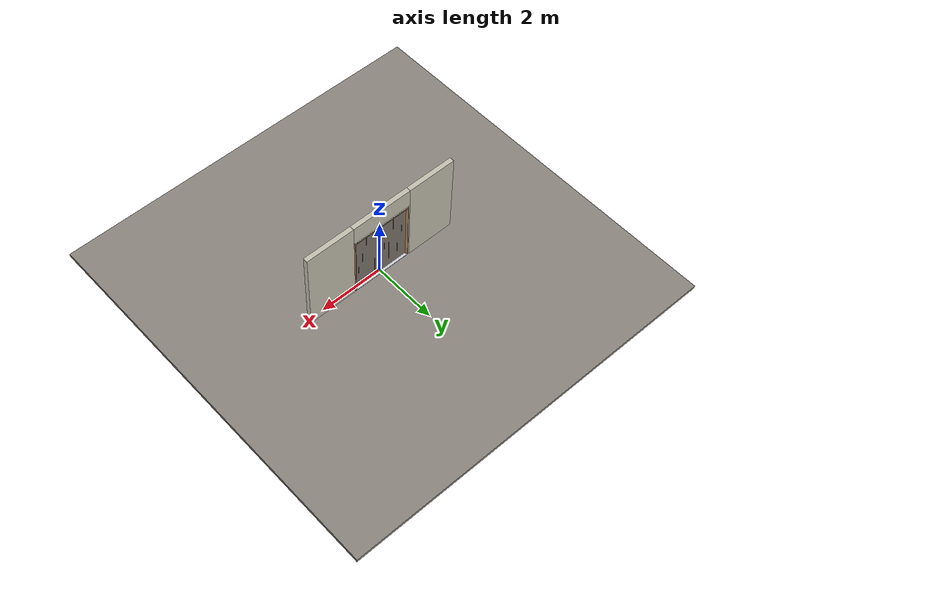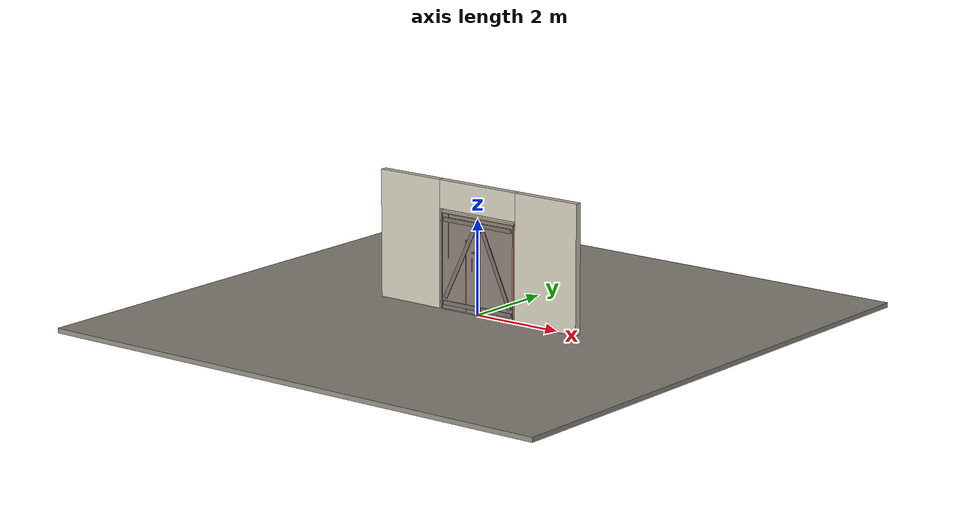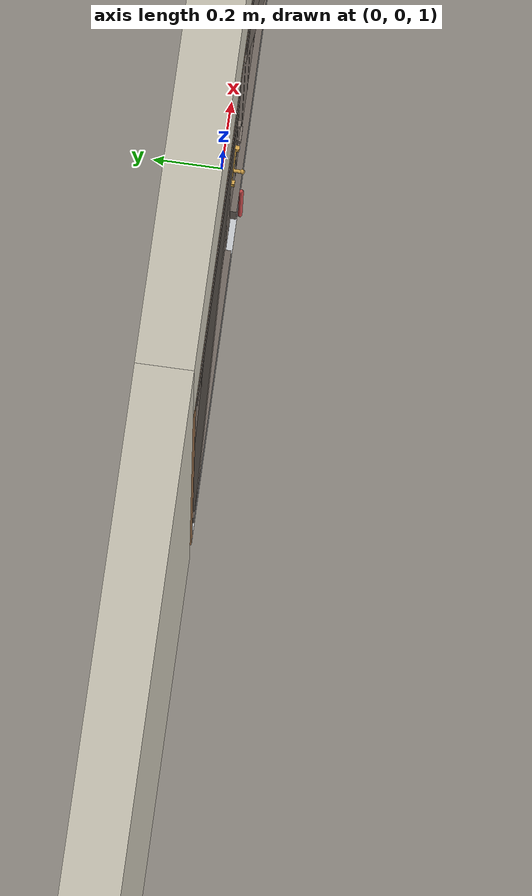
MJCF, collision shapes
<?xml version="1.0" ?>
<mujoco model="db0788_swing_double_full">
  <compiler angle="radian" meshdir="../../hardware" texturedir="../../textures" autolimits="true" inertiafromgeom="false"/>
  <option timestep="0.002" integrator="implicitfast" cone="elliptic" impratio="10" noslip_iterations="3">
    <flag multiccd="enable"/>
  </option>
  <size memory="16M"/>
  <default>
    <geom condim="4" solref="0.005 1" solimp="0.95 0.99 0.001"/>
    <joint solreflimit="0.005 1" solimplimit="0.95 0.99 0.001"/>
    <tendon solreflimit="0.005 1"/>
    <equality solref="0.002 1"/>
  </default>
  <visual>
    <headlight ambient="0.4 0.4 0.4" diffuse="0.7 0.7 0.7" specular="0.2 0.2 0.2"/>
    <quality shadowsize="4096"/>
    <map znear="0.01" zfar="60"/>
  </visual>
  <asset>
    <mesh name="pull_2b47e55ff8" file="pull_2b47e55ff8.obj"/>
    <mesh name="strap_hinge_78d1bbb966" file="strap_hinge_78d1bbb966.obj"/>
    <material name="mat_floor" rgba="0.55 0.53 0.5 1" specular="0.2" shininess="0.15" reflectance="0"/>
    <material name="mat_wall" rgba="0.78 0.76 0.7 1" specular="0.2" shininess="0.1" reflectance="0"/>
    <material name="mat_leaf_a" rgba="0.5 0.46 0.425 1" specular="0.2" shininess="0.15" reflectance="0"/>
    <material name="mat_leaf_a_brace" rgba="0.45 0.414 0.383 1" specular="0.2" shininess="0.2" reflectance="0"/>
    <material name="mat_hinge" rgba="0.65 0.66 0.68 1" specular="0.74" shininess="0.5" reflectance="0.36"/>
    <material name="mat_op_black_matte_metal" rgba="0.05 0.05 0.05 1" specular="0.38" shininess="0.3" reflectance="0.12"/>
    <material name="mat_op_brass" rgba="0.85 0.66 0.3 1" specular="0.8" shininess="0.75" reflectance="0.4"/>
    <material name="mat_leaf_b" rgba="0.5 0.46 0.425 1" specular="0.2" shininess="0.15" reflectance="0"/>
    <material name="mat_leaf_b_brace" rgba="0.45 0.414 0.383 1" specular="0.2" shininess="0.2" reflectance="0"/>
    <material name="mat_frame" rgba="0.75 0.55 0.38 1" specular="0.2" shininess="0.45" reflectance="0"/>
    <material name="mat_threshold" rgba="0.8 0.81 0.83 1" specular="0.8" shininess="0.6" reflectance="0.4"/>
    <texture name="skybox" type="skybox" builtin="gradient" rgb1="0.6 0.7 0.85" rgb2="0.9 0.92 0.95" width="256" height="256"/>
  </asset>
  <worldbody>
    <light name="sun" pos="1.5 -2.5 4" dir="-0.3 0.5 -0.8" directional="true" diffuse="0.8 0.8 0.8" specular="0.3 0.3 0.3" castshadow="true"/>
    <light name="fill" pos="-1.5 2.5 3" dir="0.3 -0.5 -0.7" directional="true" diffuse="0.35 0.35 0.4" castshadow="false"/>
    <camera name="robot_view" pos="0 -2.481688 1.709912" xyaxes="1 0 0 0 0.26963 0.962964" fovy="52"/>
    <camera name="far_view" pos="0 2.542687 1.709912" xyaxes="-1 0 0 0 -0.26963 0.962964" fovy="52"/>
    <camera name="iso" pos="-1.909262 -2.079738 2.111862" xyaxes="0.741536 -0.670913 0 0.242917 0.268487 0.932151" fovy="46"/>
    <camera name="detail_handle" pos="0.0735 -0.867 1.33" xyaxes="0.97561 0.219512 0 -0.070934 0.315262 0.94635" fovy="38"/>
    <geom name="floor" type="box" size="6 6 0.05" pos="0 0 -0.05" material="mat_floor" group="0" contype="1" conaffinity="1" friction="0.8 0.005 0.0001" density="2400"/>
    <geom name="wall_left" type="box" size="0.76775 0.0725 1.35" pos="-1.73225 0.0305 1.35" material="mat_wall" group="0" contype="1" conaffinity="1" friction="0.6 0.005 0.0001" density="800"/>
    <geom name="wall_right" type="box" size="0.76775 0.0725 1.35" pos="1.73225 0.0305 1.35" material="mat_wall" group="0" contype="1" conaffinity="1" friction="0.6 0.005 0.0001" density="800"/>
    <geom name="wall_header" type="box" size="0.9645 0.0725 0.2985" pos="0 0.0305 2.4015" material="mat_wall" group="0" contype="1" conaffinity="1" friction="0.6 0.005 0.0001" density="800"/>
    <geom name="hinge_pintle_0" type="cylinder" size="0.008 0.02" pos="-0.9015 -0.029 0.141" material="mat_hinge" group="1" contype="0" conaffinity="0" density="7850"/>
    <geom name="hinge_pintle_1" type="cylinder" size="0.008 0.02" pos="-0.9015 -0.029 1.833" material="mat_hinge" group="1" contype="0" conaffinity="0" density="7850"/>
    <geom name="hinge_pintle_0_2" type="cylinder" size="0.008 0.02" pos="0.9015 -0.029 0.141" material="mat_hinge" group="1" contype="0" conaffinity="0" density="7850"/>
    <geom name="hinge_pintle_1_2" type="cylinder" size="0.008 0.02" pos="0.9015 -0.029 1.833" material="mat_hinge" group="1" contype="0" conaffinity="0" density="7850"/>
    <geom name="jamb_l" type="box" size="0.0095 0.0725 1.0065" pos="-0.914 0.0305 1.0065" material="mat_frame" group="0" contype="1" conaffinity="1" friction="0.6 0.005 0.0001" density="300"/>
    <geom name="jamb_r" type="box" size="0.0095 0.0725 1.0065" pos="0.914 0.0305 1.0065" material="mat_frame" group="0" contype="1" conaffinity="1" friction="0.6 0.005 0.0001" density="300"/>
    <geom name="jamb_head" type="box" size="0.9235 0.0725 0.0095" pos="0 0.0305 2.0225" material="mat_frame" group="0" contype="1" conaffinity="1" friction="0.6 0.005 0.0001" density="300"/>
    <geom name="head_stud" type="box" size="0.9235 0.0725 0.015" pos="0 0.0305 2.047" material="mat_wall" group="0" contype="1" conaffinity="1" friction="0.6 0.005 0.0001" density="500"/>
    <geom name="threshold" type="box" size="0.9235 0.0725 0.0065" pos="0 0.0305 0.0065" material="mat_threshold" group="0" contype="1" conaffinity="1" friction="0.5 0.005 0.0001" density="2700"/>
    <geom name="hinge_pintle_0_strap_0" type="box" size="0.028 0.0064 0.016" pos="-0.937 -0.029 0.141" material="mat_hinge" group="1" contype="0" conaffinity="0" density="7850"/>
    <geom name="hinge_pintle_0_strap_1" type="box" size="0.028 0.0064 0.016" pos="0.937 -0.029 0.141" material="mat_hinge" group="1" contype="0" conaffinity="0" density="7850"/>
    <geom name="hinge_pintle_1_strap_0" type="box" size="0.028 0.0064 0.016" pos="-0.937 -0.029 1.833" material="mat_hinge" group="1" contype="0" conaffinity="0" density="7850"/>
    <geom name="hinge_pintle_1_strap_1" type="box" size="0.028 0.0064 0.016" pos="0.937 -0.029 1.833" material="mat_hinge" group="1" contype="0" conaffinity="0" density="7850"/>
    <site name="approach_point" pos="0 -1.5 0" quat="1 0 0 0" size="0.05" rgba="0.2 0.9 0.2 0.5" group="4"/>
    <site name="goal_point" pos="0 1.5 0" quat="1 0 0 0" size="0.05" rgba="0.2 0.9 0.2 0.5" group="4"/>
    <site name="door_plane_center" pos="0 0 1.0065" quat="1 0 0 0" size="0.02" rgba="0.2 0.9 0.2 0.5" group="4"/>
    <site name="approach_point_2" pos="0 -1.5 0" quat="1 0 0 0" size="0.05" rgba="0.2 0.9 0.2 0.5" group="4"/>
    <site name="goal_point_2" pos="0 1.5 0" quat="1 0 0 0" size="0.05" rgba="0.2 0.9 0.2 0.5" group="4"/>
    <site name="door_plane_center_2" pos="0 0 1.0065" quat="1 0 0 0" size="0.02" rgba="0.2 0.9 0.2 0.5" group="4"/>
    <site name="approach_point_3" pos="0 -1.5 0" quat="1 0 0 0" size="0.05" rgba="0.2 0.9 0.2 0.5" group="4"/>
    <site name="goal_point_3" pos="0 1.5 0" quat="1 0 0 0" size="0.05" rgba="0.2 0.9 0.2 0.5" group="4"/>
    <site name="door_plane_center_3" pos="0 0 1.0065" quat="1 0 0 0" size="0.02" rgba="0.2 0.9 0.2 0.5" group="4"/>
    <body name="leaf_a" pos="-0.9045 0 0">
      <inertial pos="0.447557 -0.001315 1.014779" mass="38.992127" quat="0.500562 0.498204 0.50183 -0.499397" diaginertia="2.773252529 13.297945883 16.050198972"/>
      <joint name="leaf_a_hinge" type="hinge" axis="0 0 -1" pos="0.003 -0.029 0" limited="true" range="0 1.396263" damping="0.286983" frictionloss="3.681024" armature="0.02"/>
      <geom name="leaf_a_slab" type="box" size="0.45 0.022 0.996" pos="0.453 0 1.013" material="mat_leaf_a" group="0" contype="1" conaffinity="1" friction="0.45 0.005 0.0001" density="1"/>
      <geom name="leaf_a_plank_gap_1" type="box" size="0.002 0.023 0.986" pos="0.153 0 1.013" material="mat_leaf_a_brace" group="1" contype="0" conaffinity="0" density="1"/>
      <geom name="leaf_a_plank_gap_2" type="box" size="0.002 0.023 0.986" pos="0.303 0 1.013" material="mat_leaf_a_brace" group="1" contype="0" conaffinity="0" density="1"/>
      <geom name="leaf_a_plank_gap_3" type="box" size="0.002 0.023 0.986" pos="0.453 0 1.013" material="mat_leaf_a_brace" group="1" contype="0" conaffinity="0" density="1"/>
      <geom name="leaf_a_plank_gap_4" type="box" size="0.002 0.023 0.986" pos="0.603 0 1.013" material="mat_leaf_a_brace" group="1" contype="0" conaffinity="0" density="1"/>
      <geom name="leaf_a_plank_gap_5" type="box" size="0.002 0.023 0.986" pos="0.753 0 1.013" material="mat_leaf_a_brace" group="1" contype="0" conaffinity="0" density="1"/>
      <geom name="leaf_a_batten_13" type="box" size="0.42 0.01 0.045" pos="0.453 -0.032 0.137" material="mat_leaf_a_brace" group="1" contype="0" conaffinity="0" density="1"/>
      <geom name="leaf_a_batten_188" type="box" size="0.42 0.01 0.045" pos="0.453 -0.032 1.889" material="mat_leaf_a_brace" group="1" contype="0" conaffinity="0" density="1"/>
      <geom name="leaf_a_brace_z" type="box" size="0.853258 0.01 0.045" pos="0.453 -0.032 1.013" quat="0.847936 0 -0.530098 0" material="mat_leaf_a_brace" group="1" contype="0" conaffinity="0" density="1"/>
      <geom name="hinge_strap_0" type="mesh" mesh="strap_hinge_78d1bbb966" pos="0.003 -0.025 0.167" material="mat_hinge" group="1" contype="0" conaffinity="0" density="7850"/>
      <geom name="hinge_strap_eye_0" type="cylinder" size="0.011 0.012" pos="0.003 -0.029 0.167" material="mat_hinge" group="1" contype="0" conaffinity="0" density="7850"/>
      <geom name="hinge_strap_neck_0" type="box" size="0.012 0.006 0.006" pos="0.003 -0.027 0.167" material="mat_hinge" group="1" contype="0" conaffinity="0" density="7850"/>
      <geom name="hinge_strap_1" type="mesh" mesh="strap_hinge_78d1bbb966" pos="0.003 -0.025 1.859" material="mat_hinge" group="1" contype="0" conaffinity="0" density="7850"/>
      <geom name="hinge_strap_eye_1" type="cylinder" size="0.011 0.012" pos="0.003 -0.029 1.859" material="mat_hinge" group="1" contype="0" conaffinity="0" density="7850"/>
      <geom name="hinge_strap_neck_1" type="box" size="0.012 0.006 0.006" pos="0.003 -0.027 1.859" material="mat_hinge" group="1" contype="0" conaffinity="0" density="7850"/>
      <geom name="leaf_a_pull_n" type="mesh" mesh="pull_2b47e55ff8" pos="0.798 -0.022 1.05" quat="0.707107 0.707107 0 0" material="mat_op_black_matte_metal" group="1" contype="0" conaffinity="0" density="3000"/>
      <geom name="leaf_a_pull_col_n" type="capsule" size="0.006 0.13" pos="0.798 -0.067 1.05" material="mat_op_black_matte_metal" group="3" contype="1" conaffinity="1" rgba="0.8 0.3 0.3 0.25" friction="0.7 0.01 0.0001" density="3000"/>
      <geom name="leaf_a_pull_p" type="mesh" mesh="pull_2b47e55ff8" pos="0.798 0.022 1.05" quat="-0.707107 0.707107 0 0" material="mat_op_black_matte_metal" group="1" contype="0" conaffinity="0" density="3000"/>
      <geom name="leaf_a_pull_col_p" type="capsule" size="0.006 0.13" pos="0.798 0.067 1.05" material="mat_op_black_matte_metal" group="3" contype="1" conaffinity="1" rgba="0.8 0.3 0.3 0.25" friction="0.7 0.01 0.0001" density="3000"/>
      <geom name="leaf_a_aux_bolt_plate" type="box" size="0.0595 0.019 0.001" pos="0.8355 -0.023 1.3" quat="0.707107 0.707107 0 0" material="mat_op_brass" group="1" contype="0" conaffinity="0" density="7800"/>
      <geom name="leaf_a_aux_bolt_guide_0_leg_n" type="box" size="0.006 0.002 0.0125" pos="0.887 -0.0345 1.289" quat="0.707107 0.707107 0 0" material="mat_op_brass" group="1" contype="0" conaffinity="0" density="7800"/>
      <geom name="leaf_a_aux_bolt_guide_0_leg_p" type="box" size="0.006 0.002 0.0125" pos="0.887 -0.0345 1.311" quat="0.707107 0.707107 0 0" material="mat_op_brass" group="1" contype="0" conaffinity="0" density="7800"/>
      <geom name="leaf_a_aux_bolt_guide_0_bridge" type="box" size="0.006 0.013 0.002" pos="0.887 -0.045 1.3" quat="0.707107 0.707107 0 0" material="mat_op_brass" group="1" contype="0" conaffinity="0" density="7800"/>
      <geom name="leaf_a_aux_bolt_guide_1_leg_n" type="box" size="0.006 0.002 0.0125" pos="0.786 -0.0345 1.289" quat="0.707107 0.707107 0 0" material="mat_op_brass" group="1" contype="0" conaffinity="0" density="7800"/>
      <geom name="leaf_a_aux_bolt_guide_1_leg_p" type="box" size="0.006 0.002 0.0125" pos="0.786 -0.0345 1.311" quat="0.707107 0.707107 0 0" material="mat_op_brass" group="1" contype="0" conaffinity="0" density="7800"/>
      <geom name="leaf_a_aux_bolt_guide_1_bridge" type="box" size="0.006 0.013 0.002" pos="0.786 -0.045 1.3" quat="0.707107 0.707107 0 0" material="mat_op_brass" group="1" contype="0" conaffinity="0" density="7800"/>
      <site name="leaf_a_pull_grip_n" pos="0.798 -0.067 1.05" quat="1 0 0 0" size="0.012" rgba="0.2 0.9 0.2 0.5" group="4"/>
      <site name="leaf_a_pull_grip_p" pos="0.798 0.067 1.05" quat="1 0 0 0" size="0.012" rgba="0.2 0.9 0.2 0.5" group="4"/>
      <site name="leaf_a_edge_mid" pos="0.903 0 0.996" quat="1 0 0 0" size="0.02" rgba="0.2 0.9 0.2 0.5" group="4"/>
      <body name="leaf_a_aux_bolt" pos="0.903 -0.034 1.3">
        <inertial pos="-0.068563 -0.00492 0" mass="0.111784" quat="0.998595 0 0 0.05299" diaginertia="0.000012212 0.000071985 0.000082309"/>
        <joint name="leaf_a_aux_bolt_slide" type="slide" axis="-1 0 0" limited="true" range="0 0.045" damping="1" frictionloss="1" armature="0.1" ref="0.045"/>
        <geom name="leaf_a_aux_bolt_rod" type="capsule" size="0.006 0.044" pos="-0.065 0 0" quat="0.707107 0 0.707107 0" material="mat_op_brass" group="0" contype="1" conaffinity="1" friction="0.6 0.005 0.0001" density="7850"/>
        <geom name="leaf_a_aux_bolt_knob" type="capsule" size="0.005 0.01" pos="-0.08 -0.015 0" quat="0.707107 0.707107 0 0" material="mat_op_brass" group="0" contype="1" conaffinity="1" friction="0.6 0.005 0.0001" density="7850"/>
        <geom name="leaf_a_aux_bolt_knob_end" type="sphere" size="0.00675" pos="-0.08 -0.03 0" material="mat_op_brass" group="1" contype="0" conaffinity="0" density="7850"/>
        <site name="leaf_a_aux_bolt_grip" pos="-0.08 -0.034 0" quat="1 0 0 0" size="0.012" rgba="0.2 0.9 0.2 0.5" group="4"/>
      </body>
    </body>
    <body name="leaf_b" pos="0.9045 0 0">
      <inertial pos="-0.409203 -0.001256 1.013" mass="38.72809" quat="0.501394 0.49859 -0.501406 0.498602" diaginertia="2.335798383 13.550997258 15.872630207"/>
      <joint name="leaf_b_hinge" type="hinge" axis="0 0 1" pos="-0.003 -0.029 0" limited="true" range="0 0.001" damping="0.286983" frictionloss="3.681024" armature="0.02"/>
      <geom name="leaf_b_edge_1300_wall_n" type="box" size="0.03 0.024 0.01" pos="-0.873 -0.002 1.3" material="mat_leaf_b" group="0" contype="1" conaffinity="1" friction="0.6 0.005 0.0001" density="1"/>
      <geom name="leaf_b_edge_1300_wall_p" type="box" size="0.022 0.003 0.01" pos="-0.881 -0.045 1.3" material="mat_leaf_b" group="0" contype="1" conaffinity="1" friction="0.6 0.005 0.0001" density="1"/>
      <geom name="leaf_b_edge_1300_back" type="box" size="0.009 0.008 0.01" pos="-0.852 -0.034 1.3" material="mat_leaf_b" group="0" contype="1" conaffinity="1" friction="0.6 0.005 0.0001" density="1"/>
      <geom name="leaf_b_edge_seg_0" type="box" size="0.03 0.022 0.6365" pos="-0.873 0 0.6535" material="mat_leaf_b" group="0" contype="1" conaffinity="1" friction="0.6 0.005 0.0001" density="1"/>
      <geom name="leaf_b_edge_seg_1" type="box" size="0.03 0.022 0.3495" pos="-0.873 0 1.6595" material="mat_leaf_b" group="0" contype="1" conaffinity="1" friction="0.6 0.005 0.0001" density="1"/>
      <geom name="leaf_b_slab" type="box" size="0.42 0.022 0.996" pos="-0.423 0 1.013" material="mat_leaf_b" group="0" contype="1" conaffinity="1" friction="0.45 0.005 0.0001" density="1"/>
      <geom name="leaf_b_plank_gap_1" type="box" size="0.002 0.023 0.986" pos="-0.143 0 1.013" material="mat_leaf_b_brace" group="1" contype="0" conaffinity="0" density="1"/>
      <geom name="leaf_b_plank_gap_2" type="box" size="0.002 0.023 0.986" pos="-0.283 0 1.013" material="mat_leaf_b_brace" group="1" contype="0" conaffinity="0" density="1"/>
      <geom name="leaf_b_plank_gap_3" type="box" size="0.002 0.023 0.986" pos="-0.423 0 1.013" material="mat_leaf_b_brace" group="1" contype="0" conaffinity="0" density="1"/>
      <geom name="leaf_b_plank_gap_4" type="box" size="0.002 0.023 0.986" pos="-0.563 0 1.013" material="mat_leaf_b_brace" group="1" contype="0" conaffinity="0" density="1"/>
      <geom name="leaf_b_plank_gap_5" type="box" size="0.002 0.023 0.986" pos="-0.703 0 1.013" material="mat_leaf_b_brace" group="1" contype="0" conaffinity="0" density="1"/>
      <geom name="leaf_b_batten_13" type="box" size="0.39 0.01 0.045" pos="-0.423 -0.032 0.137" material="mat_leaf_b_brace" group="1" contype="0" conaffinity="0" density="1"/>
      <geom name="leaf_b_batten_188" type="box" size="0.39 0.01 0.045" pos="-0.423 -0.032 1.889" material="mat_leaf_b_brace" group="1" contype="0" conaffinity="0" density="1"/>
      <geom name="leaf_b_brace_z" type="box" size="0.840523 0.01 0.045" pos="-0.423 -0.032 1.013" quat="0.839903 0 0.542737 0" material="mat_leaf_b_brace" group="1" contype="0" conaffinity="0" density="1"/>
      <geom name="hinge_strap_0_2" type="mesh" mesh="strap_hinge_78d1bbb966" pos="-0.003 -0.025 0.167" quat="0 0 0 1" material="mat_hinge" group="1" contype="0" conaffinity="0" density="7850"/>
      <geom name="hinge_strap_eye_0_2" type="cylinder" size="0.011 0.012" pos="-0.003 -0.029 0.167" material="mat_hinge" group="1" contype="0" conaffinity="0" density="7850"/>
      <geom name="hinge_strap_neck_0_2" type="box" size="0.012 0.006 0.006" pos="-0.003 -0.027 0.167" material="mat_hinge" group="1" contype="0" conaffinity="0" density="7850"/>
      <geom name="hinge_strap_1_2" type="mesh" mesh="strap_hinge_78d1bbb966" pos="-0.003 -0.025 1.859" quat="0 0 0 1" material="mat_hinge" group="1" contype="0" conaffinity="0" density="7850"/>
      <geom name="hinge_strap_eye_1_2" type="cylinder" size="0.011 0.012" pos="-0.003 -0.029 1.859" material="mat_hinge" group="1" contype="0" conaffinity="0" density="7850"/>
      <geom name="hinge_strap_neck_1_2" type="box" size="0.012 0.006 0.006" pos="-0.003 -0.027 1.859" material="mat_hinge" group="1" contype="0" conaffinity="0" density="7850"/>
      <site name="leaf_b_edge_mid" pos="-0.903 0 0.996" quat="1 0 0 0" size="0.02" rgba="0.2 0.9 0.2 0.5" group="4"/>
    </body>
  </worldbody>
  <sensor>
    <jointpos name="leaf_a_hinge_pos" joint="leaf_a_hinge"/>
    <jointvel name="leaf_a_hinge_vel" joint="leaf_a_hinge"/>
    <jointpos name="leaf_a_aux_bolt_slide_pos" joint="leaf_a_aux_bolt_slide"/>
    <jointvel name="leaf_a_aux_bolt_slide_vel" joint="leaf_a_aux_bolt_slide"/>
    <jointpos name="leaf_b_hinge_pos" joint="leaf_b_hinge"/>
    <jointvel name="leaf_b_hinge_vel" joint="leaf_b_hinge"/>
  </sensor>
</mujoco>
